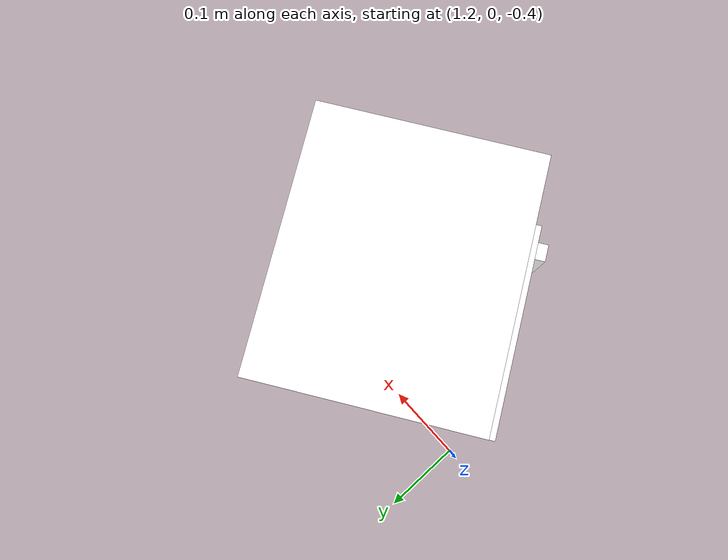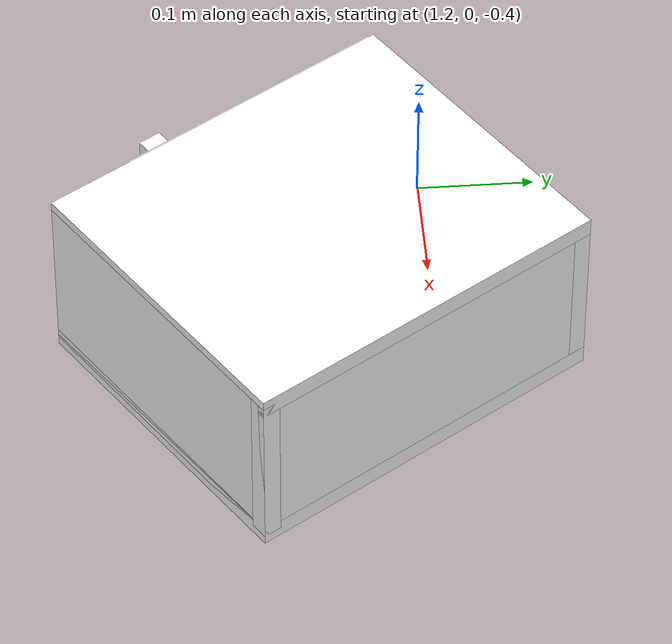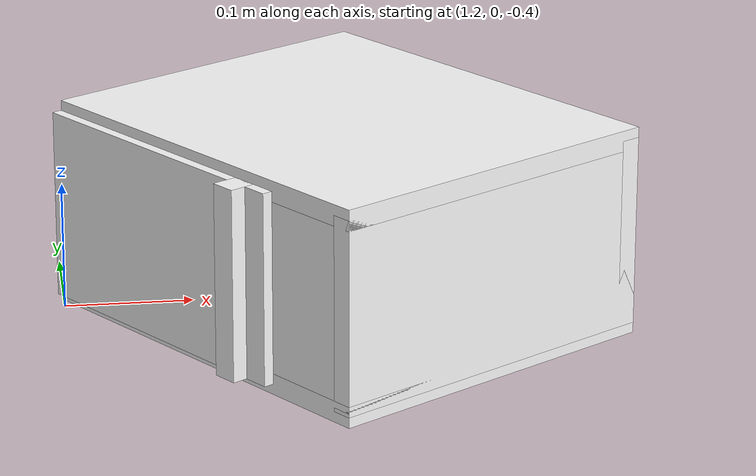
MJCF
<mujoco model="cabinet">
    <compiler angle="radian" eulerseq='zxy' />
    <option gravity = "0 0 0" />
    <option>
        <flag contact = "disable"/>
    </option>
    <statistic	extent="1.0" center="0.0 0.0 0.0"/>
    <visual>
        <map fogstart="3" fogend="5" force="0.1" znear=" 0.100000 " zfar=" 12.000000 "/>
    </visual>
    <size njmax="500" nconmax="100" />
    <actuator>
        <velocity joint="bottom_left_hinge" name="viva_revolution" kv='10'></velocity>
    </actuator>
    <asset>
        <texture builtin="flat" name="tabletex" height="32" width="32" rgb1="1 1 1" type="cube"></texture>
        <texture builtin="flat" name="objtex" height="32" width="32" rgb1="1 1 1" type="cube"></texture>
        <texture builtin="flat" name="handletex" height="32" width="32" rgb1="1 1 1" type="cube"></texture>
        <texture builtin="flat" name="wallpaper" height="32" width="32" rgb1="1 0 0" type="cube"></texture>
        <texture builtin="flat" name="kp" height="32" width="32" rgb1="1 1 1" type="cube"></texture>
        <material name="geomTable" shininess="0.03" specular="0.75" texture="tabletex"></material>
        <material name="geomObj" shininess="0.03" specular="0.75" texture="objtex"></material>
        <material name="geomHandle" shininess="0.03" specular="0.75" texture="handletex"></material>
        <material name="ax" shininess="0.03" specular="0.75" texture="wallpaper"></material>
        <material name="bg" shininess="0.03" specular="0.75" texture="wallpaper"></material>
        <material name="geomKeypad" shininess="0.03" specular="0.75" texture="kp"></material>
    </asset>
    <worldbody>
        <body name="cabinet_bottom" pos= " 1.408197 -0.098894 -0.372979 "  quat= " -0.289763 0.000000 0.000000 0.957098" >
            <inertial pos="0 0 0" mass="1" diaginertia="1 1 1" />
            <geom size= " 0.140570 0.164899 0.007915 "  type="box" material="geomObj" name="b"/>
            <body name="cabinet_left" pos= " 0.000000 -0.156984 0.072654 " >
                <inertial pos="0 0 0" mass="1" diaginertia="1 1 1" />
                <geom size= " 0.140570 0.007915 0.072654 "  type="box" material="geomObj" name="c" />
            </body>
            <body name="cabinet_right" pos= " 0.000000 0.156984 0.072654 " >
                <inertial pos="0 0 0" mass="1" diaginertia="1 1 1" />
                <geom size= " 0.140570 0.007915 0.072654 "  type="box" material="geomObj" name="d" />
            </body>
            <body name="cabinet_top" pos= " 0.000000 0.000000 0.145308 " >
                <inertial pos="0 0 0" mass="1" diaginertia="1 1 1" />
                <geom size= " 0.140570 0.164899 0.007915 "  type="box" material="geomObj" name="e"/>
            </body>
            <body name="cabinet_back" pos= " -0.132654 0.000000 0.072654 "  >
                <inertial pos="0 0 0" mass="1" diaginertia="1 1 1" />
                <geom size= " 0.007915 0.164899 0.072654 "  type="box" material="geomObj" name="f" />
            </body>
            <body name="cabinet_keypad" pos= " 0.007915 0.122674 0.072654 " >
                <inertial pos="0 0 0" mass="1" diaginertia="1 1 1" />
                <geom size= " 0.132654 0.041225 0.064738 "  type="box" material="geomKeypad" name="keypizzlemynizzle" />
            </body>
            <body name="cabinet_left_hinge" pos= " 0.140570 -0.164899 0.072654 " >
                <inertial pos= " 0.000000 0.123674 0.000000 "  mass="1" diaginertia="1 1 1" />
                <joint name="bottom_left_hinge" type="hinge" pos="0 0 0" axis="0 0 1" limited="true" range= "-2.3 0"  />
                <geom size= " 0.007915 0.123674 0.072654 "  pos= " 0.000000 0.123674 0.000000 "  type="box" material="geomObj" name="g"/>
                <body name="handle_link" pos= " 0.010000 0.217349 0.000000 " >
                    <inertial pos="0 0 0" mass="1" diaginertia="1 1 1" />
                    <geom size= " 0.010000 0.010000 0.072654 "  type="box" material="geomHandle" name="h"/>
                </body>
            </body>
        </body>
        <body name="external_camera_body_0" pos="0.0 0 0.00" >
            <camera euler="-1.57 1.57 0.0" fovy=" 54.280851 " name="external_camera_0" pos="0.0 0 0"></camera>
            <inertial pos= " 0.00 0.0 0.000000 " mass="1" diaginertia="1 1 1" />
            <joint name="cam_j" pos="0.0 0 0" axis = "1 0 0" type="free" />
        </body>
    </worldbody>
</mujoco>
